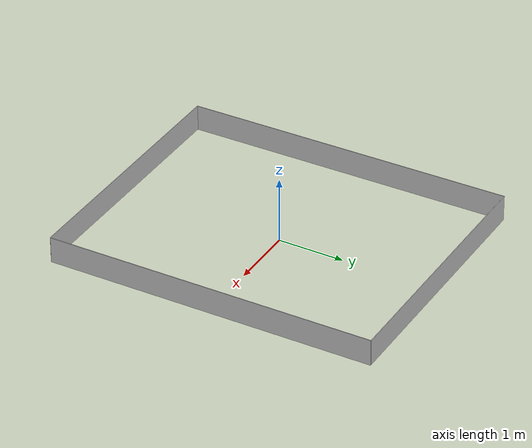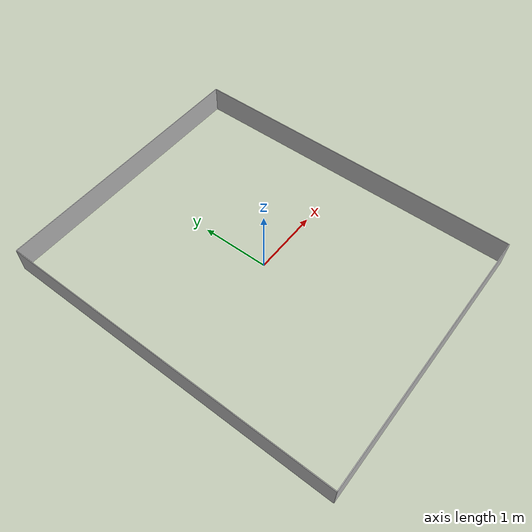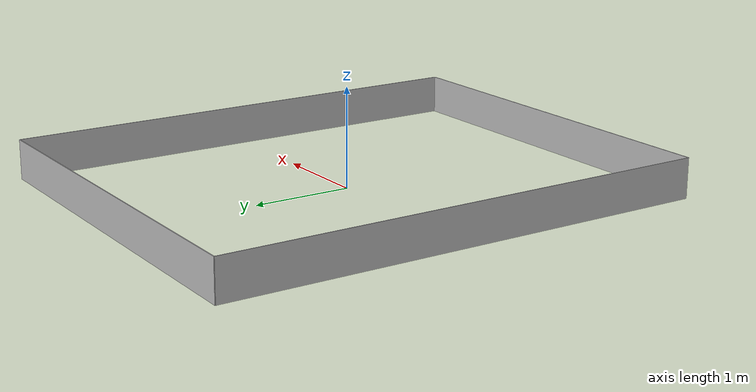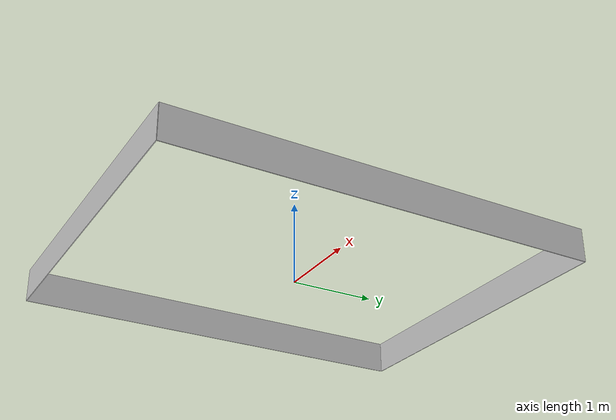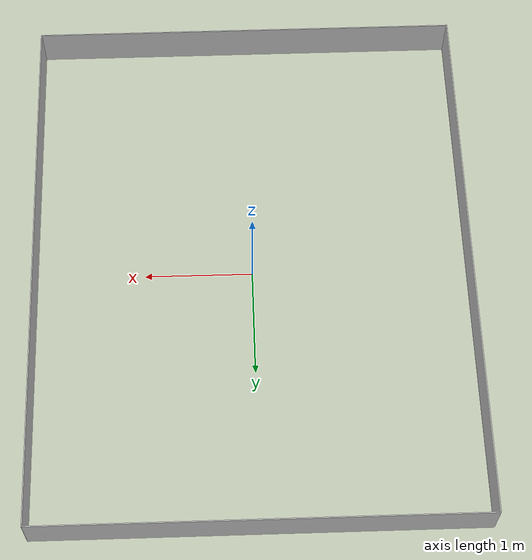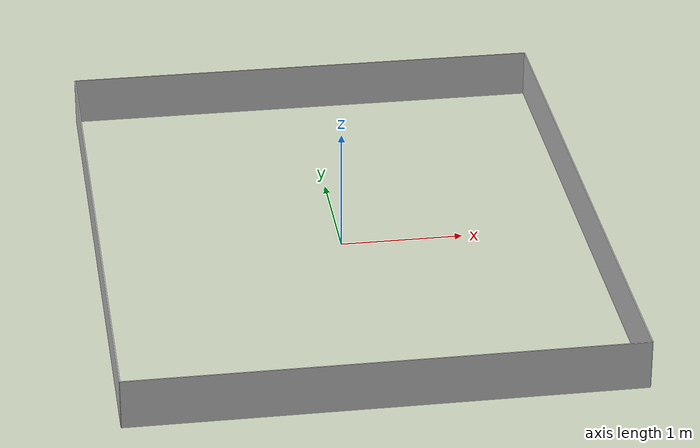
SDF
<?xml version="1.0"?>
<sdf version="1.6">
  <model name="boundary_4x5m">
    <static>true</static>

    <!-- Dimensions:
         outer size: 4.0 m x 5.0 m
         wall thickness: 0.01 m
         wall height: 0.40 m
    -->

    <!-- Front wall -->
    <link name="front_wall">
      <pose>0 -2.5 0.2 0 0 0</pose>
      <collision name="collision">
        <geometry><box><size>4.0 0.01 0.4</size></box></geometry>
      </collision>
      <visual name="visual">
        <geometry><box><size>4.0 0.01 0.4</size></box></geometry>
      </visual>
    </link>

    <!-- Back wall -->
    <link name="back_wall">
      <pose>0 2.5 0.2 0 0 0</pose>
      <collision name="collision">
        <geometry><box><size>4.0 0.01 0.4</size></box></geometry>
      </collision>
      <visual name="visual">
        <geometry><box><size>4.0 0.01 0.4</size></box></geometry>
      </visual>
    </link>

    <!-- Left wall -->
    <link name="left_wall">
      <pose>-2.0 0 0.2 0 0 0</pose>
      <collision name="collision">
        <geometry><box><size>0.01 5.0 0.4</size></box></geometry>
      </collision>
      <visual name="visual">
        <geometry><box><size>0.01 5.0 0.4</size></box></geometry>
      </visual>
    </link>

    <!-- Right wall -->
    <link name="right_wall">
      <pose>2.0 0 0.2 0 0 0</pose>
      <collision name="collision">
        <geometry><box><size>0.01 5.0 0.4</size></box></geometry>
      </collision>
      <visual name="visual">
        <geometry><box><size>0.01 5.0 0.4</size></box></geometry>
      </visual>
    </link>

  </model>
</sdf>
